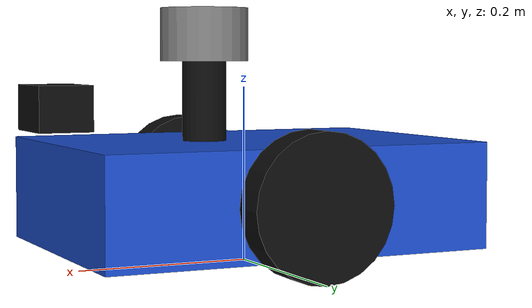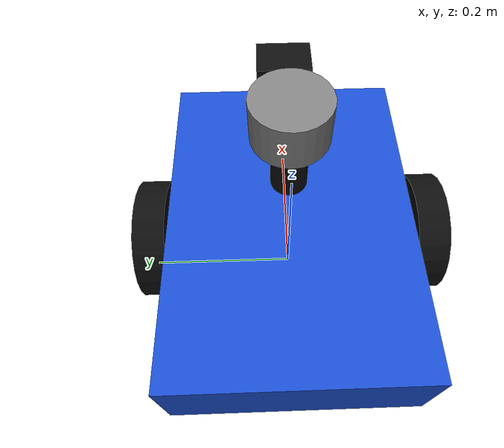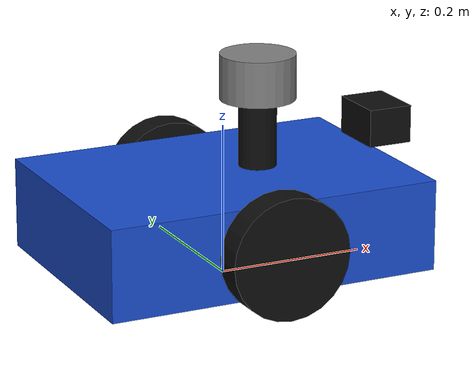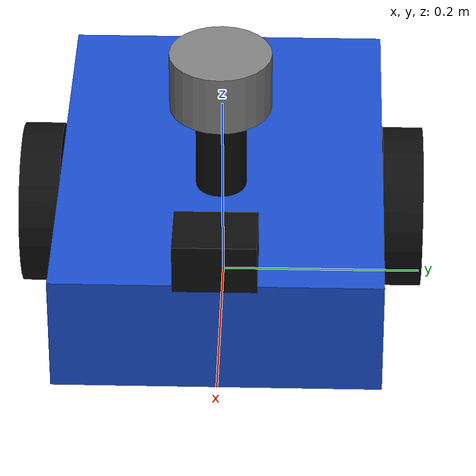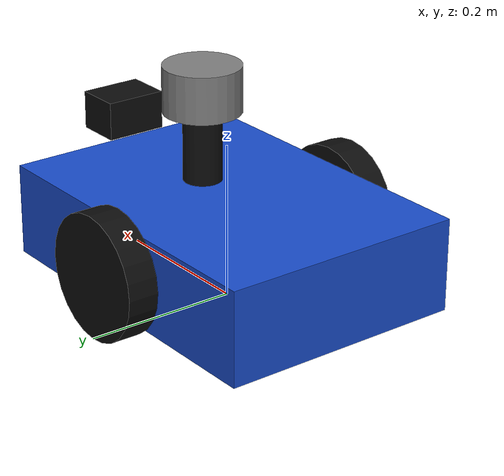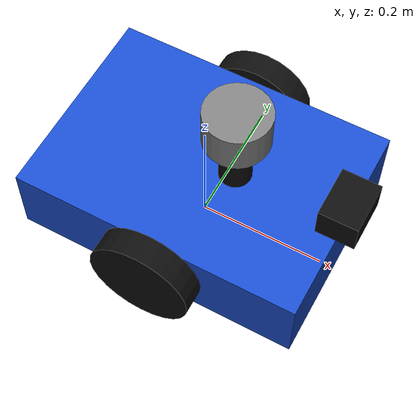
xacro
<?xml version="1.0"?>

<robot xmlns:xacro="http://www.ros.org/wiki/xacro"
       name="robot_diferencial">

  <!-- Parámetros geométricos                                -->

  <xacro:property name="base_length" value="0.45"/>
  <xacro:property name="base_width" value="0.32"/>
  <xacro:property name="base_height" value="0.12"/>

  <xacro:property name="wheel_radius" value="0.08"/>
  <xacro:property name="wheel_width" value="0.04"/>
  <xacro:property name="wheel_separation" value="0.36"/>

  <xacro:property name="caster_radius" value="0.035"/>

  <!-- Parámetros físicos                                    -->

  <xacro:property name="base_mass" value="5.0"/>
  <xacro:property name="wheel_mass" value="0.5"/>
  <xacro:property name="caster_mass" value="0.1"/>

  <!-- Materiales                                            -->

  <material name="blue">
    <color rgba="0.1 0.3 0.8 1.0"/>
  </material>

  <material name="black">
    <color rgba="0.05 0.05 0.05 1.0"/>
  </material>

  <material name="gray">
    <color rgba="0.5 0.5 0.5 1.0"/>
  </material>

  <!-- Marco de referencia sobre el suelo                    -->

  <link name="base_footprint"/>

  <!-- Chasis                                                -->

  <link name="base_link">

    <!-- Apariencia -->

    <visual>
      <origin xyz="0 0 0" rpy="0 0 0"/>

      <geometry>
        <box size="${base_length} ${base_width} ${base_height}"/>
      </geometry>

      <material name="blue"/>
    </visual>

    <!-- Forma utilizada para colisiones -->

    <collision>
      <origin xyz="0 0 0" rpy="0 0 0"/>

      <geometry>
        <box size="${base_length} ${base_width} ${base_height}"/>
      </geometry>
    </collision>

    <!-- Masa e inercia -->

    <inertial>
      <origin xyz="0 0 0" rpy="0 0 0"/>

      <mass value="${base_mass}"/>

      <inertia
        ixx="0.04867"
        ixy="0.0"
        ixz="0.0"
        iyy="0.09038"
        iyz="0.0"
        izz="0.12704"/>
    </inertial>

  </link>

  <!-- El centro del chasis queda a la altura del radio -->
  <!-- de las ruedas respecto al suelo                       -->

  <joint name="base_footprint_joint" type="fixed">
    <parent link="base_footprint"/>
    <child link="base_link"/>

    <origin xyz="0 0 ${wheel_radius}" rpy="0 0 0"/>
  </joint>

  <!-- Rueda izquierda                                      -->

  <link name="left_wheel_link">

    <visual>
      <origin xyz="0 0 0" rpy="0 0 0"/>

      <geometry>
        <cylinder
          radius="${wheel_radius}"
          length="${wheel_width}"/>
      </geometry>

      <material name="black"/>
    </visual>

    <collision>
      <origin xyz="0 0 0" rpy="0 0 0"/>

      <geometry>
        <cylinder
          radius="${wheel_radius}"
          length="${wheel_width}"/>
      </geometry>
    </collision>

    <inertial>
      <origin xyz="0 0 0" rpy="0 0 0"/>

      <mass value="${wheel_mass}"/>

      <inertia
        ixx="0.000867"
        ixy="0.0"
        ixz="0.0"
        iyy="0.000867"
        iyz="0.0"
        izz="0.001600"/>
    </inertial>

  </link>

  <joint name="left_wheel_joint" type="continuous">
    <parent link="base_link"/>
    <child link="left_wheel_link"/>

    <origin
      xyz="0 ${wheel_separation / 2.0} 0"
      rpy="${pi / 2.0} 0 0"/>

    <axis xyz="0 0 1"/>

    <dynamics damping="0.1" friction="0.1"/>
  </joint>

  <!-- Rueda derecha                                        -->

  <link name="right_wheel_link">

    <visual>
      <origin xyz="0 0 0" rpy="0 0 0"/>

      <geometry>
        <cylinder
          radius="${wheel_radius}"
          length="${wheel_width}"/>
      </geometry>

      <material name="black"/>
    </visual>

    <collision>
      <origin xyz="0 0 0" rpy="0 0 0"/>

      <geometry>
        <cylinder
          radius="${wheel_radius}"
          length="${wheel_width}"/>
      </geometry>
    </collision>

    <inertial>
      <origin xyz="0 0 0" rpy="0 0 0"/>

      <mass value="${wheel_mass}"/>

      <inertia
        ixx="0.000867"
        ixy="0.0"
        ixz="0.0"
        iyy="0.000867"
        iyz="0.0"
        izz="0.001600"/>
    </inertial>

  </link>

  <joint name="right_wheel_joint" type="continuous">
    <parent link="base_link"/>
    <child link="right_wheel_link"/>

    <origin
      xyz="0 ${-wheel_separation / 2.0} 0"
      rpy="${pi / 2.0} 0 0"/>

    <axis xyz="0 0 1"/>

    <dynamics damping="0.1" friction="0.1"/>
  </joint>

  <!-- Rueda de apoyo frontal                               -->

  <link name="caster_link">

    <visual>
      <origin xyz="0 0 0" rpy="0 0 0"/>

      <geometry>
        <sphere radius="${caster_radius}"/>
      </geometry>

      <material name="gray"/>
    </visual>

    <collision>
      <origin xyz="0 0 0" rpy="0 0 0"/>

      <geometry>
        <sphere radius="${caster_radius}"/>
      </geometry>
    </collision>

    <inertial>
      <origin xyz="0 0 0" rpy="0 0 0"/>

      <mass value="${caster_mass}"/>

      <inertia
        ixx="0.000049"
        ixy="0.0"
        ixz="0.0"
        iyy="0.000049"
        iyz="0.0"
        izz="0.000049"/>
    </inertial>

  </link>

  <joint name="caster_joint" type="fixed">
    <parent link="base_link"/>
    <child link="caster_link"/>

    <origin xyz="0.16 0 -0.045" rpy="0 0 0"/>
  </joint>

  <!-- LiDAR 2D                                             -->

  <link name="lidar_link">

    <!-- Cuerpo principal del LiDAR -->

    <visual name="lidar_body_visual">
      <origin xyz="0 0 0" rpy="0 0 0"/>

      <geometry>
        <cylinder radius="0.05" length="0.06"/>
      </geometry>

      <material name="gray"/>
    </visual>

    <!-- Pedestal del LiDAR -->

    <visual name="lidar_pedestal_visual">
      <origin xyz="0 0 -0.075" rpy="0 0 0"/>

      <geometry>
        <cylinder radius="0.025" length="0.09"/>
      </geometry>

      <material name="black"/>
    </visual>

    <collision name="lidar_body_collision">
      <origin xyz="0 0 0" rpy="0 0 0"/>

      <geometry>
        <cylinder radius="0.05" length="0.06"/>
      </geometry>
    </collision>

    <inertial>
      <origin xyz="0 0 0" rpy="0 0 0"/>

      <mass value="0.10"/>

      <inertia
        ixx="0.0000325"
        ixy="0.0"
        ixz="0.0"
        iyy="0.0000325"
        iyz="0.0"
        izz="0.000125"/>
    </inertial>

  </link>

  <joint name="lidar_joint" type="fixed">
    <parent link="base_link"/>
    <child link="lidar_link"/>

    <origin xyz="0.05 0 0.18" rpy="0 0 0"/>
  </joint>

  <!-- Sensor LiDAR simulado por Gazebo -->

  <gazebo reference="lidar_link">

    <sensor name="lidar_sensor" type="gpu_lidar">

      <pose>0 0 0 0 0 0</pose>

      <always_on>true</always_on>
      <update_rate>10</update_rate>
      <visualize>true</visualize>

      <topic>/scan</topic>

      <gz_frame_id>lidar_link</gz_frame_id>

      <lidar>

        <scan>

          <horizontal>
            <samples>360</samples>
            <resolution>1</resolution>
            <min_angle>-3.14159265</min_angle>
            <max_angle>3.14159265</max_angle>
          </horizontal>

        </scan>

        <range>
          <min>0.10</min>
          <max>8.0</max>
          <resolution>0.01</resolution>
        </range>

        <noise>
          <type>gaussian</type>
          <mean>0.0</mean>
          <stddev>0.01</stddev>
        </noise>

      </lidar>

    </sensor>

  </gazebo>

  <!-- Camara RGB                                            -->

  <link name="camera_link">

    <visual>
      <origin xyz="0 0 0" rpy="0 0 0"/>

      <geometry>
        <box size="0.06 0.08 0.05"/>
      </geometry>

      <material name="black"/>
    </visual>

    <collision>
      <origin xyz="0 0 0" rpy="0 0 0"/>

      <geometry>
        <box size="0.06 0.08 0.05"/>
      </geometry>
    </collision>

    <inertial>
      <origin xyz="0 0 0" rpy="0 0 0"/>

      <mass value="0.10"/>

      <inertia
        ixx="0.000074"
        ixy="0.0"
        ixz="0.0"
        iyy="0.000051"
        iyz="0.0"
        izz="0.000083"/>
    </inertial>

  </link>

  <joint name="camera_joint" type="fixed">
    <parent link="base_link"/>
    <child link="camera_link"/>

    <origin xyz="0.225 0 0.10" rpy="0 0 0"/>
  </joint>

  <!-- Frame optico de la camara -->

  <link name="camera_optical_link"/>

  <joint name="camera_optical_joint" type="fixed">
    <parent link="camera_link"/>
    <child link="camera_optical_link"/>

    <origin
      xyz="0.031 0 0"
      rpy="${-pi / 2.0} 0 ${-pi / 2.0}"/>
  </joint>

  <!-- Sensor de camara simulado por Gazebo -->

  <gazebo reference="camera_link">

    <sensor name="camera_sensor" type="camera">

      <pose>0.031 0 0 0 0 0</pose>

      <always_on>true</always_on>
      <update_rate>20</update_rate>
      <visualize>true</visualize>

      <topic>/camera/image_raw</topic>

      <gz_frame_id>camera_optical_link</gz_frame_id>

      <camera>

        <horizontal_fov>1.3962634</horizontal_fov>

        <image>
          <width>640</width>
          <height>480</height>
          <format>R8G8B8</format>
        </image>

        <clip>
          <near>0.05</near>
          <far>20.0</far>
        </clip>

        <noise>
          <type>gaussian</type>
          <mean>0.0</mean>
          <stddev>0.007</stddev>
        </noise>

      </camera>

    </sensor>

  </gazebo>

  <!-- Control diferencial de Gazebo                         -->

  <gazebo>
    <plugin
      filename="gz-sim-diff-drive-system"
      name="gz::sim::systems::DiffDrive">

      <!-- Articulaciones de las ruedas -->
      <left_joint>left_wheel_joint</left_joint>
      <right_joint>right_wheel_joint</right_joint>

      <!-- Parámetros geométricos -->
      <wheel_separation>${wheel_separation}</wheel_separation>
      <wheel_radius>${wheel_radius}</wheel_radius>

      <!-- Topic de entrada de velocidad -->
      <topic>/cmd_vel</topic>

      <!-- Publicación de odometría -->
      <odom_topic>/odom</odom_topic>
      <tf_topic>/tf</tf_topic>
      <odom_publish_frequency>30</odom_publish_frequency>

      <!-- Marcos de referencia -->
      <frame_id>odom</frame_id>
      <child_frame_id>base_footprint</child_frame_id>

    </plugin>
  </gazebo>

  <!-- Publicacion de los estados de las ruedas -->

  <gazebo>
    <plugin
      filename="gz-sim-joint-state-publisher-system"
      name="gz::sim::systems::JointStatePublisher">

      <topic>/joint_states</topic>

      <joint_name>left_wheel_joint</joint_name>
      <joint_name>right_wheel_joint</joint_name>

    </plugin>
  </gazebo>

</robot>
